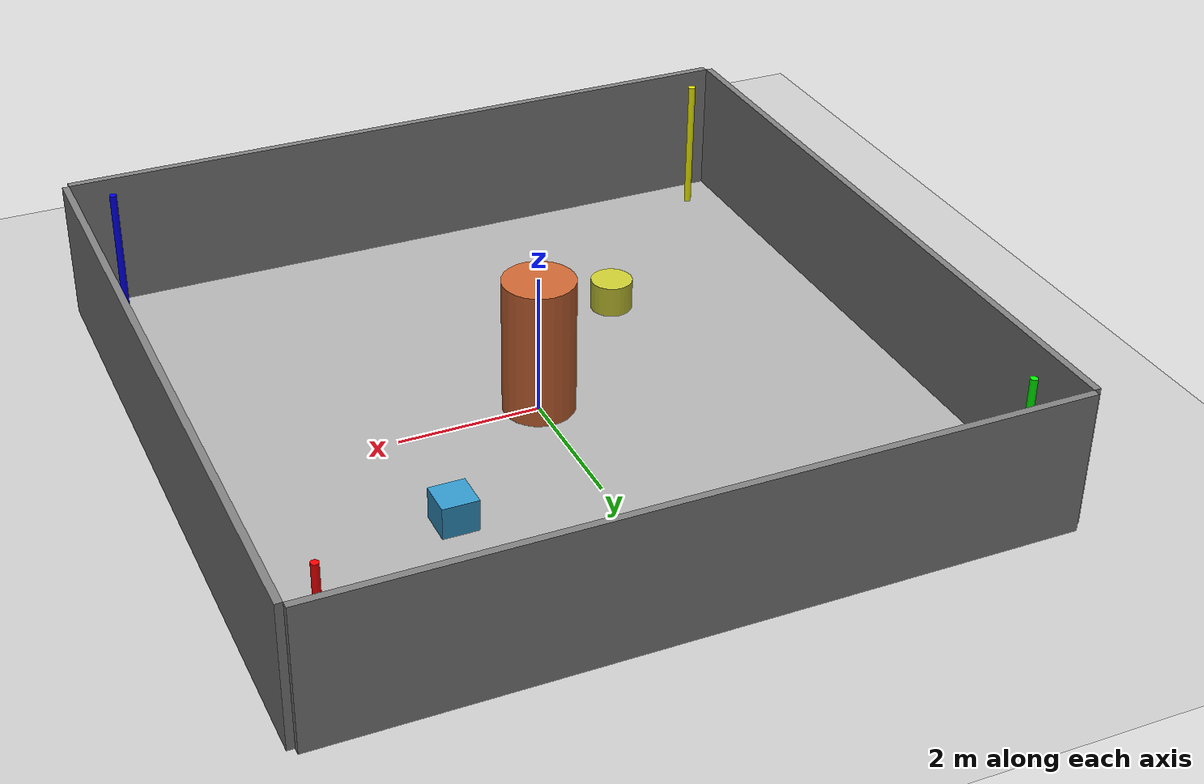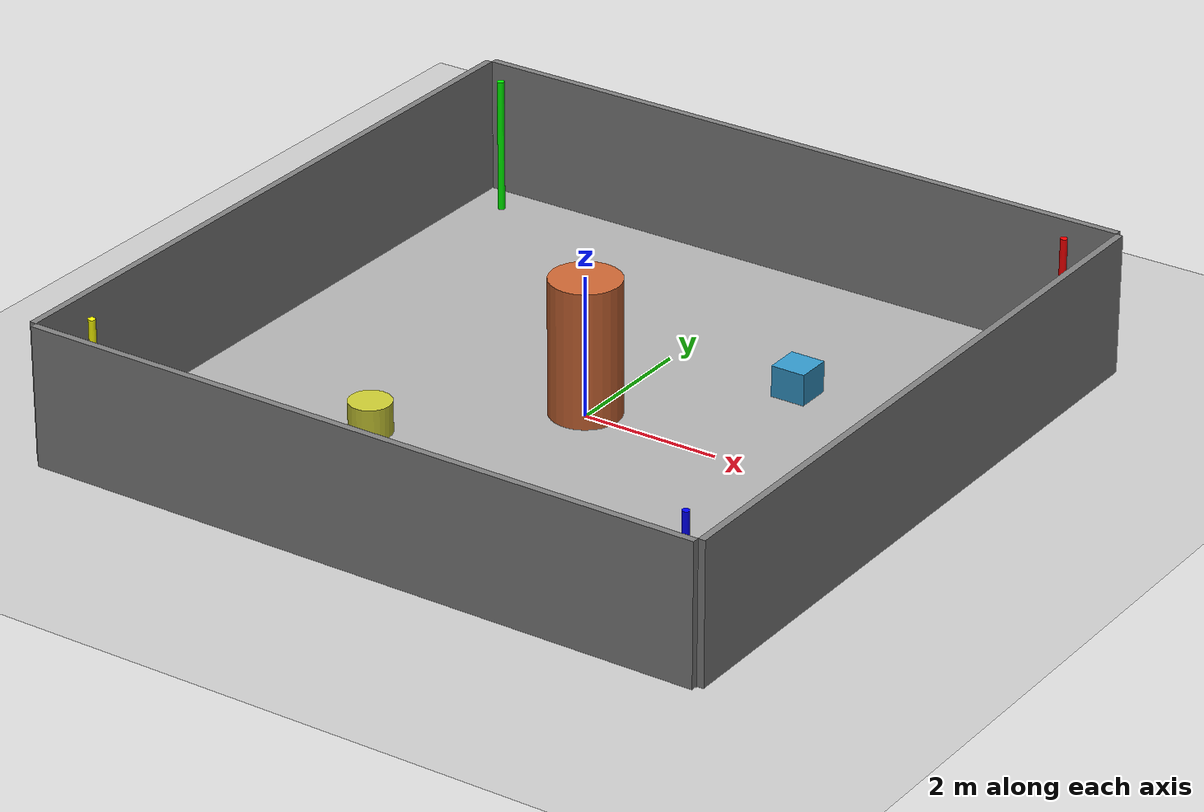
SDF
<sdf version="1.7">
 <world name="humanoid_arena">
  <physics name="ode_physics" type="ode">
   <max_step_size>0.001</max_step_size>
   <real_time_factor>1.0</real_time_factor>
   <real_time_update_rate>1000.0</real_time_update_rate>
   <gravity>0 0 -9.8</gravity>
   <ode>
    <solver><type>quick</type><iters>10</iters><sor>1.3</sor></solver>
    <constraints>
     <cfm>0.0</cfm>
     <erp>0.2</erp>
     <contact_max_correcting_vel>100.0</contact_max_correcting_vel>
     <contact_surface_layer>0.001</contact_surface_layer>
    </constraints>
   </ode>
  </physics>
  <include><uri>model://ground_plane</uri></include>
  <include><uri>model://sun</uri></include>
  <model name="arena_floor">
   <link name="link">
    <collision name="collision">
     <geometry><box><size>10 10 0.1</size></box></geometry>
     <surface><friction><ode><mu>1.0</mu><mu2>1.0</mu2></ode></friction></surface>
    </collision>
    <visual name="visual">
     <geometry><box><size>10 10 0.1</size></box></geometry>
     <material>
      <ambient>0.7 0.7 0.7 1</ambient>
      <diffuse>0.7 0.7 0.7 1</diffuse>
      <specular>0.3 0.3 0.3 1</specular>
     </material>
    </visual>
    <inertial>
     <mass>1000</mass>
     <inertia><ixx>833.33</ixx><ixy>0</ixy><ixz>0</ixz><iyy>833.33</iyy><iyz>0</iyz><izz>1666.67</izz></inertia>
    </inertial>
   </link>
  </model>
  <model name="north_wall">
   <pose>0 5.05 1 0 0 0</pose>
   <link name="link">
    <collision name="collision">
     <geometry><box><size>10 0.1 2</size></box></geometry>
     <surface><friction><ode><mu>0.5</mu><mu2>0.5</mu2></ode></friction></surface>
    </collision>
    <visual name="visual">
     <geometry><box><size>10 0.1 2</size></box></geometry>
     <material>
      <ambient>0.5 0.5 0.5 1</ambient>
      <diffuse>0.5 0.5 0.5 1</diffuse>
      <specular>0.1 0.1 0.1 1</specular>
     </material>
    </visual>
    <inertial>
     <mass>100</mass>
     <inertia><ixx>1.67</ixx><ixy>0</ixy><ixz>0</ixz><iyy>833.35</iyy><iyz>0</iyz><izz>835.02</izz></inertia>
    </inertial>
   </link>
  </model>
  <model name="south_wall">
   <pose>0 -5.05 1 0 0 0</pose>
   <link name="link">
    <collision name="collision">
     <geometry><box><size>10 0.1 2</size></box></geometry>
     <surface><friction><ode><mu>0.5</mu><mu2>0.5</mu2></ode></friction></surface>
    </collision>
    <visual name="visual">
     <geometry><box><size>10 0.1 2</size></box></geometry>
     <material>
      <ambient>0.5 0.5 0.5 1</ambient>
      <diffuse>0.5 0.5 0.5 1</diffuse>
      <specular>0.1 0.1 0.1 1</specular>
     </material>
    </visual>
    <inertial>
     <mass>100</mass>
     <inertia><ixx>1.67</ixx><ixy>0</ixy><ixz>0</ixz><iyy>833.35</iyy><iyz>0</iyz><izz>835.02</izz></inertia>
    </inertial>
   </link>
  </model>
  <model name="east_wall">
   <pose>5.05 0 1 0 0 1.5708</pose>
   <link name="link">
    <collision name="collision">
     <geometry><box><size>10 0.1 2</size></box></geometry>
     <surface><friction><ode><mu>0.5</mu><mu2>0.5</mu2></ode></friction></surface>
    </collision>
    <visual name="visual">
     <geometry><box><size>10 0.1 2</size></box></geometry>
     <material>
      <ambient>0.5 0.5 0.5 1</ambient>
      <diffuse>0.5 0.5 0.5 1</diffuse>
      <specular>0.1 0.1 0.1 1</specular>
     </material>
    </visual>
    <inertial>
     <mass>100</mass>
     <inertia><ixx>1.67</ixx><ixy>0</ixy><ixz>0</ixz><iyy>833.35</iyy><iyz>0</iyz><izz>835.02</izz></inertia>
    </inertial>
   </link>
  </model>
  <model name="west_wall">
   <pose>-5.05 0 1 0 0 1.5708</pose>
   <link name="link">
    <collision name="collision">
     <geometry><box><size>10 0.1 2</size></box></geometry>
     <surface><friction><ode><mu>0.5</mu><mu2>0.5</mu2></ode></friction></surface>
    </collision>
    <visual name="visual">
     <geometry><box><size>10 0.1 2</size></box></geometry>
     <material>
      <ambient>0.5 0.5 0.5 1</ambient>
      <diffuse>0.5 0.5 0.5 1</diffuse>
      <specular>0.1 0.1 0.1 1</specular>
     </material>
    </visual>
    <inertial>
     <mass>100</mass>
     <inertia><ixx>1.67</ixx><ixy>0</ixy><ixz>0</ixz><iyy>833.35</iyy><iyz>0</iyz><izz>835.02</izz></inertia>
    </inertial>
   </link>
  </model>
  <model name="center_pillar">
   <pose>0 0 1 0 0 0</pose>
   <link name="link">
    <collision name="collision">
     <geometry><cylinder><radius>0.5</radius><length>2</length></cylinder></geometry>
     <surface><friction><ode><mu>0.8</mu><mu2>0.8</mu2></ode></friction></surface>
    </collision>
    <visual name="visual">
     <geometry><cylinder><radius>0.5</radius><length>2</length></cylinder></geometry>
     <material>
      <ambient>0.8 0.4 0.2 1</ambient>
      <diffuse>0.8 0.4 0.2 1</diffuse>
      <specular>0.2 0.2 0.2 1</specular>
     </material>
    </visual>
    <inertial>
     <mass>50</mass>
     <inertia><ixx>11.25</ixx><ixy>0</ixy><ixz>0</ixz><iyy>11.25</iyy><iyz>0</iyz><izz>6.25</izz></inertia>
    </inertial>
   </link>
  </model>
  <model name="obstacle_1">
   <pose>2 2 0.25 0 0 0</pose>
   <link name="link">
    <collision name="collision">
     <geometry><box><size>0.5 0.5 0.5</size></box></geometry>
     <surface><friction><ode><mu>0.9</mu><mu2>0.9</mu2></ode></friction></surface>
    </collision>
    <visual name="visual">
     <geometry><box><size>0.5 0.5 0.5</size></box></geometry>
     <material>
      <ambient>0.2 0.6 0.8 1</ambient>
      <diffuse>0.2 0.6 0.8 1</diffuse>
      <specular>0.2 0.2 0.2 1</specular>
     </material>
    </visual>
    <inertial>
     <mass>5</mass>
     <inertia><ixx>0.208</ixx><ixy>0</ixy><ixz>0</ixz><iyy>0.208</iyy><iyz>0</iyz><izz>0.208</izz></inertia>
    </inertial>
   </link>
  </model>
  <model name="obstacle_2">
   <pose>-2 -2 0.25 0 0 0</pose>
   <link name="link">
    <collision name="collision">
     <geometry><cylinder><radius>0.3</radius><length>0.5</length></cylinder></geometry>
     <surface><friction><ode><mu>0.7</mu><mu2>0.7</mu2></ode></friction></surface>
    </collision>
    <visual name="visual">
     <geometry><cylinder><radius>0.3</radius><length>0.5</length></cylinder></geometry>
     <material>
      <ambient>0.8 0.8 0.2 1</ambient>
      <diffuse>0.8 0.8 0.2 1</diffuse>
      <specular>0.2 0.2 0.2 1</specular>
     </material>
    </visual>
    <inertial>
     <mass>3</mass>
     <inertia><ixx>0.1575</ixx><ixy>0</ixy><ixz>0</ixz><iyy>0.1575</iyy><iyz>0</iyz><izz>0.135</izz></inertia>
    </inertial>
   </link>
  </model>
  <light name="ambient_light" type="directional">
   <pose>0 0 10 0 0 0</pose>
   <diffuse>0.8 0.8 0.8 1</diffuse>
   <specular>0.2 0.2 0.2 1</specular>
   <attenuation>
    <range>100</range>
    <constant>0.9</constant>
    <linear>0.01</linear>
    <quadratic>0.001</quadratic>
   </attenuation>
   <direction>-0.3 -0.3 -1</direction>
  </light>
  <scene><ambient>0.4 0.4 0.4 1</ambient><background>0.7 0.7 0.7 1</background><shadows>true</shadows></scene>
  <model name="overhead_camera">
   <pose>0 0 8 0 1.5708 0</pose>
   <link name="link">
    <inertial>
     <mass>0.1</mass>
     <inertia><ixx>0.0001</ixx><ixy>0</ixy><ixz>0</ixz><iyy>0.0001</iyy><iyz>0</iyz><izz>0.0001</izz></inertia>
    </inertial>
    <sensor name="overhead_rgbd_camera" type="rgbd">
     <always_on>true</always_on>
     <update_rate>30</update_rate>
     <camera>
      <horizontal_fov>1.047</horizontal_fov>
      <image><width>640</width><height>480</height></image>
      <clip><near>0.1</near><far>100</far></clip>
     </camera>
     <plugin name="camera_controller" filename="libgazebo_ros_camera.so">
      <frame_name>overhead_camera_optical_frame</frame_name>
      <topic_name>overhead_camera/rgb/image_raw</topic_name>
      <camera_info_topic_name>overhead_camera/rgb/camera_info</camera_info_topic_name>
     </plugin>
    </sensor>
   </link>
  </model>
  <model name="corner_marker_north_east">
   <pose>4.5 4.5 1 0 0 0</pose>
   <link name="link">
    <visual name="visual">
     <geometry><cylinder><radius>0.05</radius><length>2</length></cylinder></geometry>
     <material><ambient>1 0 0 1</ambient><diffuse>1 0 0 1</diffuse><specular>0.5 0.5 0.5 1</specular></material>
    </visual>
    <collision name="collision">
     <geometry><cylinder><radius>0.05</radius><length>2</length></cylinder></geometry>
    </collision>
    <inertial>
     <mass>1</mass>
     <inertia><ixx>0.335</ixx><ixy>0</ixy><ixz>0</ixz><iyy>0.335</iyy><iyz>0</iyz><izz>0.0025</izz></inertia>
    </inertial>
   </link>
  </model>
  <model name="corner_marker_north_west">
   <pose>-4.5 4.5 1 0 0 0</pose>
   <link name="link">
    <visual name="visual">
     <geometry><cylinder><radius>0.05</radius><length>2</length></cylinder></geometry>
     <material><ambient>0 1 0 1</ambient><diffuse>0 1 0 1</diffuse><specular>0.5 0.5 0.5 1</specular></material>
    </visual>
    <collision name="collision">
     <geometry><cylinder><radius>0.05</radius><length>2</length></cylinder></geometry>
    </collision>
    <inertial>
     <mass>1</mass>
     <inertia><ixx>0.335</ixx><ixy>0</ixy><ixz>0</ixz><iyy>0.335</iyy><iyz>0</iyz><izz>0.0025</izz></inertia>
    </inertial>
   </link>
  </model>
  <model name="corner_marker_south_east">
   <pose>4.5 -4.5 1 0 0 0</pose>
   <link name="link">
    <visual name="visual">
     <geometry><cylinder><radius>0.05</radius><length>2</length></cylinder></geometry>
     <material><ambient>0 0 1 1</ambient><diffuse>0 0 1 1</diffuse><specular>0.5 0.5 0.5 1</specular></material>
    </visual>
    <collision name="collision">
     <geometry><cylinder><radius>0.05</radius><length>2</length></cylinder></geometry>
    </collision>
    <inertial>
     <mass>1</mass>
     <inertia><ixx>0.335</ixx><ixy>0</ixy><ixz>0</ixz><iyy>0.335</iyy><iyz>0</iyz><izz>0.0025</izz></inertia>
    </inertial>
   </link>
  </model>
  <model name="corner_marker_south_west">
   <pose>-4.5 -4.5 1 0 0 0</pose>
   <link name="link">
    <visual name="visual">
     <geometry><cylinder><radius>0.05</radius><length>2</length></cylinder></geometry>
     <material><ambient>1 1 0 1</ambient><diffuse>1 1 0 1</diffuse><specular>0.5 0.5 0.5 1</specular></material>
    </visual>
    <collision name="collision">
     <geometry><cylinder><radius>0.05</radius><length>2</length></cylinder></geometry>
    </collision>
    <inertial>
     <mass>1</mass>
     <inertia><ixx>0.335</ixx><ixy>0</ixy><ixz>0</ixz><iyy>0.335</iyy><iyz>0</iyz><izz>0.0025</izz></inertia>
    </inertial>
   </link>
  </model>
  <model name="goal_area">
   <pose>0 4 0.02 0 0 0</pose>
   <link name="link">
    <visual name="visual">
     <geometry><box><size>2 0.1 0.04</size></box></geometry>
     <material>
      <ambient>1 0.5 0 1</ambient>
      <diffuse>1 0.5 0 1</diffuse>
      <specular>0.5 0.5 0.5 1</specular>
     </material>
    </visual>
    <collision name="collision"><geometry><box><size>2 0.1 0.04</size></box></geometry></collision>
    <inertial>
     <mass>1</mass>
     <inertia><ixx>0.0085</ixx><ixy>0</ixy><ixz>0</ixz><iyy>0.3335</iyy><iyz>0</iyz><izz>0.342</izz></inertia>
    </inertial>
   </link>
  </model>
 </world>
</sdf>
